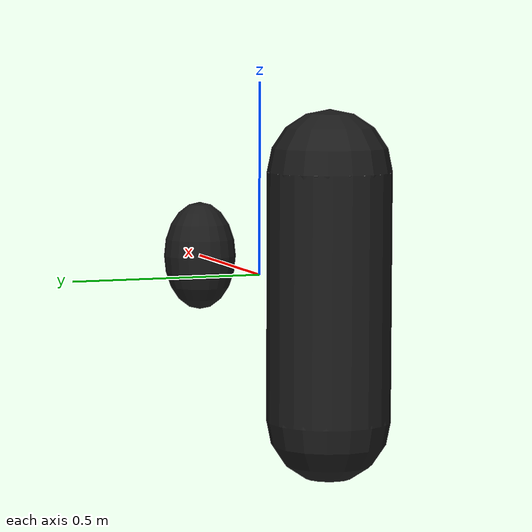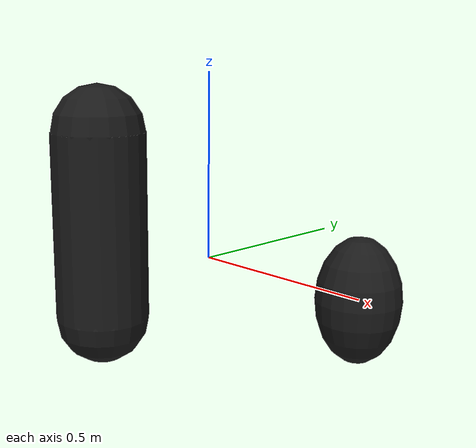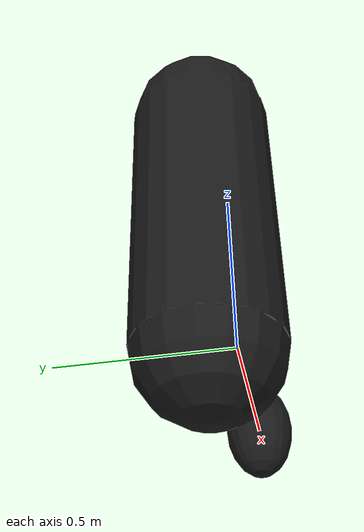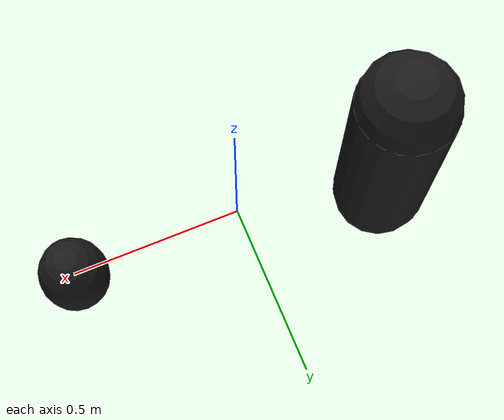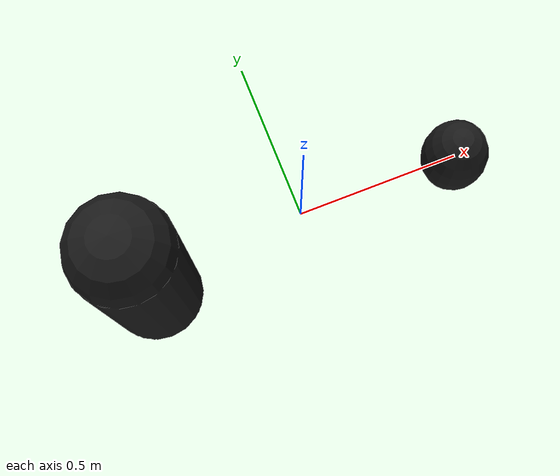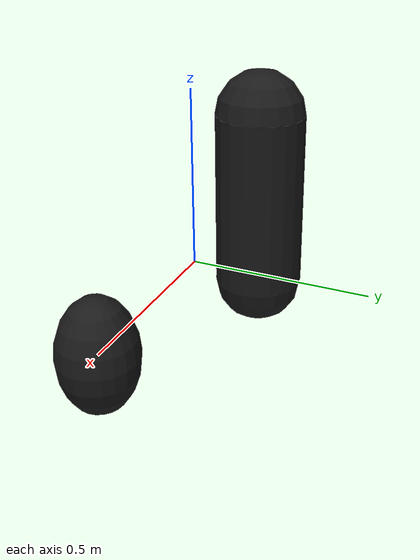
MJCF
<mujoco model="Capsule-Ellipsoid Distance">
  <visual>
    <headlight ambient=".7 .7 .7"/>
    <rgba rangefinder="1 .2 .1 1"/>
  </visual>
  <option>
    <flag gravity="disable"/>
  </option>
  <asset>
    <texture type="skybox" builtin="gradient" width="512" height="512" rgb1="1 1 1" rgb2="1 1 1"/>
  </asset>

  <default>
    <geom rgba=".1 .1 .1 1"/>
  </default>

  <worldbody>
    <body pos="-.5 0 0">
      <freejoint/>
      <geom name="capsule" type="capsule" size=".15 .30"/>
    </body>

    <body pos=".5 0 0">
      <freejoint/>
      <geom name="ellipsoid" type="ellipsoid" size=".10 .10 .15"/>
    </body>
  </worldbody>

  <sensor>
    <fromto geom1="capsule" geom2="ellipsoid" cutoff="15"/>
  </sensor>
</mujoco>
